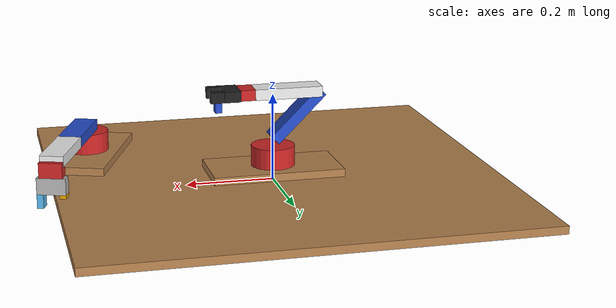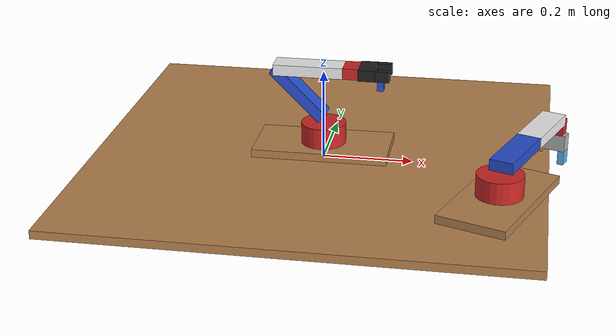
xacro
<?xml version="1.0"?>
<robot name="gaffa"
    xmlns:xi="http://www.w3.org/2001/XInclude"
    xmlns:gazebo="http://playerstage.sourceforge.net/gazebo/xmlschema/#gz"
    xmlns:model="http://playerstage.sourceforge.net/gazebo/xmlschema/#model"
    xmlns:sensor="http://playerstage.sourceforge.net/gazebo/xmlschema/#sensor"
    xmlns:body="http://playerstage.sourceforge.net/gazebo/xmlschema/#body"
    xmlns:geom="http://playerstage.sourceforge.net/gazebo/xmlschema/#geom"
    xmlns:joint="http://playerstage.sourceforge.net/gazebo/xmlschema/#joint"
    xmlns:interface="http://playerstage.sourceforge.net/gazebo/xmlschema/#interface"
    xmlns:rendering="http://playerstage.sourceforge.net/gazebo/xmlschema/#rendering"
    xmlns:renderable="http://playerstage.sourceforge.net/gazebo/xmlschema/#renderable"
    xmlns:controller="http://playerstage.sourceforge.net/gazebo/xmlschema/#controller"
    xmlns:physics="http://playerstage.sourceforge.net/gazebo/xmlschema/#physics"
    xmlns:xacro="http://www.ros.org/wiki/xacro">

    <include filename="$(find gaffa_description)/urdf/lynxmotion.urdf.xacro" />
    <include filename="$(find gaffa_description)/urdf/maplin.urdf.xacro" />

    <property name="GAFFA_BASE_MASS" value="100" />
    <property name="GAFFA_BASE_LENGTH" value="1" />
    <property name="GAFFA_BASE_WIDTH" value="1" />
    <property name="GAFFA_BASE_HEIGHT" value="0.018" />

    <!-- Base Block -->
    <link name="gaffa_base_block">
        <inertial>
        <mass value="${GAFFA_BASE_MASS}" />
        <origin xyz="0 0 0" rpy="0 0 0" />
        <inertia ixx="${GAFFA_BASE_MASS*(GAFFA_BASE_WIDTH*GAFFA_BASE_WIDTH + GAFFA_BASE_HEIGHT*GAFFA_BASE_HEIGHT)/12.0}"
                ixy="0" ixz="0"
                iyy="${GAFFA_BASE_MASS*(GAFFA_BASE_LENGTH*GAFFA_BASE_LENGTH + GAFFA_BASE_HEIGHT*GAFFA_BASE_HEIGHT)/12.0}"
                iyz="0"
                izz="${GAFFA_BASE_MASS*(GAFFA_BASE_LENGTH*GAFFA_BASE_LENGTH + GAFFA_BASE_WIDTH*GAFFA_BASE_WIDTH)/12.0}" />
        </inertial>
        <visual>
        <origin xyz="0 0 ${GAFFA_BASE_HEIGHT/2}" rpy="0 0 0" />
        <geometry name="base_block_visual_geom">
            <box size="${GAFFA_BASE_LENGTH} ${GAFFA_BASE_WIDTH} ${GAFFA_BASE_HEIGHT}" />
        </geometry>
        </visual>
        <collision>
        <origin xyz="0 0 ${GAFFA_BASE_HEIGHT/2}" rpy="0.0 0.0 0.0" />
        <geometry name="base_block_collision_geom">
            <box size="${GAFFA_BASE_LENGTH} ${GAFFA_BASE_WIDTH} ${GAFFA_BASE_HEIGHT}" />
        </geometry>
        </collision>
    </link>
    <gazebo reference="gaffa_base_block">
        <material>Gazebo/WoodFloor</material>
        <turnGravityOff>false</turnGravityOff>
        <selfCollide>true</selfCollide>
    </gazebo>

    <xacro:maplin_arm name="maplin" parent="gaffa_base_block">
        <origin xyz="0 0 ${GAFFA_BASE_HEIGHT}" rpy="0 0 0" />
    </xacro:maplin_arm>

    <xacro:lynxmotion_arm name="lynxmotion" parent="gaffa_base_block">
        <origin xyz="0.4 -0.22 ${GAFFA_BASE_HEIGHT}" rpy="0 0 ${70.0*M_PI/180.0}" />
    </xacro:lynxmotion_arm>

    <gazebo>

        <!-- PR2_ACTARRAY -->
        <controller:gazebo_ros_controller_manager name="gazebo_ros_controller_manager" plugin="libgazebo_ros_controller_manager.so">
            <alwaysOn>true</alwaysOn>
            <updateRate>1000.0</updateRate>
            <interface:audio name="gazebo_ros_controller_manager_dummy_iface" />
        </controller:gazebo_ros_controller_manager>

        <controller:gazebo_ros_time name="gazebo_ros_time" plugin="libgazebo_ros_time.so">
            <alwaysOn>true</alwaysOn>
            <updateRate>1000.0</updateRate>
            <interface:audio name="dummy_gazebo_ros_time_iface_should_not_be_here"/>
        </controller:gazebo_ros_time>
    </gazebo>

</robot>

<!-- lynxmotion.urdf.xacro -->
<robot
    xmlns:xi="http://www.w3.org/2001/XInclude"
    xmlns:gazebo="http://playerstage.sourceforge.net/gazebo/xmlschema/#gz"
    xmlns:model="http://playerstage.sourceforge.net/gazebo/xmlschema/#model"
    xmlns:sensor="http://playerstage.sourceforge.net/gazebo/xmlschema/#sensor"
    xmlns:body="http://playerstage.sourceforge.net/gazebo/xmlschema/#body"
    xmlns:geom="http://playerstage.sourceforge.net/gazebo/xmlschema/#geom"
    xmlns:joint="http://playerstage.sourceforge.net/gazebo/xmlschema/#joint"
    xmlns:interface="http://playerstage.sourceforge.net/gazebo/xmlschema/#interface"
    xmlns:rendering="http://playerstage.sourceforge.net/gazebo/xmlschema/#rendering"
    xmlns:renderable="http://playerstage.sourceforge.net/gazebo/xmlschema/#renderable"
    xmlns:controller="http://playerstage.sourceforge.net/gazebo/xmlschema/#controller"
    xmlns:physics="http://playerstage.sourceforge.net/gazebo/xmlschema/#physics"
    xmlns:xacro="http://www.ros.org/wiki/xacro">

<property name="M_PI" value="3.1415926535897931" />
<property name="BASE_MASS" value="100" />
<property name="BASE_LENGTH" value="0.3" />
<property name="BASE_WIDTH" value="0.15" />
<property name="BASE_HEIGHT" value="0.018" />

<property name="BASE_ROTATE_MASS" value="0.25" />
<property name="BASE_ROTATE_RADIUS" value="0.05" />
<property name="BASE_ROTATE_HEIGHT" value="0.0466" />

<property name="SHOULDER_HEIGHT" value="0.06193" />

<property name="UPPER_ARM_MASS" value="0.1" />
<property name="UPPER_ARM_LENGTH" value="0.154" />
<property name="UPPER_ARM_WIDTH" value="0.052" />
<property name="UPPER_ARM_HEIGHT" value="0.0244" />

<!-- Mass includes both elbow and wrist servos -->
<property name="FORE_ARM_MASS" value="0.21" />
<property name="FORE_ARM_LENGTH" value="0.154" />
<property name="FORE_ARM_WIDTH" value="0.053" />
<property name="FORE_ARM_HEIGHT" value="0.0244" />

<!-- Mass includes gripper rotate servo -->
<property name="WRIST_MASS" value="0.065" />
<property name="WRIST_LENGTH" value="0.0346" />
<property name="WRIST_WIDTH" value="0.052" />
<property name="WRIST_HEIGHT" value="0.0244" />

<!-- Mass includes gripper 'grip' servo -->
<property name="GRIPPER_BASE_MASS" value="0.065" />
<property name="GRIPPER_BASE_LENGTH" value="0.037" />
<property name="GRIPPER_BASE_WIDTH" value="0.0648" />
<property name="GRIPPER_BASE_HEIGHT" value="0.0244" />

<property name="GRIPPER_FINGER_MASS" value="0.01" />
<property name="GRIPPER_FINGER_LENGTH" value="0.0315" />
<property name="GRIPPER_FINGER_WIDTH" value="0.0144" />
<property name="GRIPPER_FINGER_HEIGHT" value="0.0244" />

<xacro:macro name="lynxmotion_arm" params="parent name *origin">

<!-- Base Block -->
<joint name="${name}_base_block_joint" type="fixed" >
    <axis xyz="1 0 0" />
    <limit upper="0" lower="0" effort="100" velocity="5" />
    <parent link="${parent}" />
    <xacro:insert_block name="origin" />
    <child link="${name}_base_block" />
</joint>
<link name="${name}_base_block">
    <inertial>
    <mass value="${BASE_MASS}" />
    <origin xyz="0 0 0" rpy="0 0 0" />
    <inertia ixx="${BASE_MASS*(BASE_WIDTH*BASE_WIDTH + BASE_HEIGHT*BASE_HEIGHT)/12.0}"
            ixy="0" ixz="0"
            iyy="${BASE_MASS*(BASE_LENGTH*BASE_LENGTH + BASE_HEIGHT*BASE_HEIGHT)/12.0}"
            iyz="0"
            izz="${BASE_MASS*(BASE_LENGTH*BASE_LENGTH + BASE_WIDTH*BASE_WIDTH)/12.0}" />
    </inertial>
    <visual>
    <origin xyz="0 0 ${BASE_HEIGHT/2}" rpy="0 0 0" />
    <geometry name="base_block_visual_geom">
        <box size="${BASE_LENGTH} ${BASE_WIDTH} ${BASE_HEIGHT}" />
    </geometry>
    </visual>
    <collision>
    <origin xyz="0 0 ${BASE_HEIGHT/2}" rpy="0.0 0.0 0.0" />
    <geometry name="base_block_collision_geom">
        <box size="${BASE_LENGTH} ${BASE_WIDTH} ${BASE_HEIGHT}" />
    </geometry>
    </collision>
</link>
<gazebo reference="${name}_base_block">
    <material>Gazebo/LightWood</material>
    <turnGravityOff>false</turnGravityOff>
    <selfCollide>true</selfCollide>
</gazebo>

<!-- Base Rotate -->
<joint name="${name}_base_rotate_joint" type="revolute" >
    <axis xyz="0 0 1" />
    <limit upper="${M_PI/2}" lower="${-M_PI/2}" effort="100" velocity="5" />
    <safety_controller k_position="20" k_velocity="4"
        soft_upper_limit="${M_PI/2 - 0.10}"
        soft_lower_limit="${-M_PI/2 + 0.10}" />
    <parent link="${name}_base_block" />
    <origin xyz="0 0 ${BASE_ROTATE_HEIGHT/2 + BASE_HEIGHT}" rpy="0 0 0" />
    <child link="${name}_base_rotate_link" />
</joint>
<link name="${name}_base_rotate_link">
    <inertial >
    <mass value="${BASE_ROTATE_MASS}" />
    <origin xyz="0 0 0" />
    <inertia ixx="${BASE_ROTATE_MASS*(3*BASE_ROTATE_RADIUS*BASE_ROTATE_RADIUS + BASE_ROTATE_HEIGHT*BASE_ROTATE_HEIGHT)/12.0}"
            ixy="0.0"  ixz="0.0"
            iyy="${BASE_ROTATE_MASS*(3*BASE_ROTATE_RADIUS*BASE_ROTATE_RADIUS + BASE_ROTATE_HEIGHT*BASE_ROTATE_HEIGHT)/12.0}"
            iyz="0.0"
            izz="${(BASE_ROTATE_MASS*BASE_ROTATE_RADIUS*BASE_ROTATE_RADIUS)/2.0}" />
    </inertial>
    <visual >
    <origin xyz="0.0 0 0" rpy="0 0 0" />
    <geometry name="base_rotate_visual_geom">
        <cylinder radius="${BASE_ROTATE_RADIUS}" length="${BASE_ROTATE_HEIGHT}" />
    </geometry>
    </visual>
    <collision >
    <origin xyz="0.0 0 0" rpy="0 0 0" />
    <geometry name="base_rotate_collision_geom">
        <cylinder radius="${BASE_ROTATE_RADIUS}" length="${BASE_ROTATE_HEIGHT}" />
    </geometry>
    </collision>
</link>
<gazebo reference="${name}_base_rotate_link">
    <material>Gazebo/Red</material>
    <turnGravityOff>false</turnGravityOff>
    <selfCollide>true</selfCollide>
</gazebo>

<!-- Shoulder and Upper arm -->
<joint name="${name}_shoulder_rotate_joint" type="revolute" >
    <axis xyz="0 0 1" />
    <limit upper="${3*M_PI/4}" lower="0" effort="100" velocity="5" />
    <safety_controller k_position="20" k_velocity="4"
        soft_upper_limit="${3*M_PI/4 - 0.10}"
        soft_lower_limit="${0.0 + 0.10}" />
    <parent link="${name}_base_rotate_link" />
    <origin xyz="0 0 ${SHOULDER_HEIGHT - BASE_ROTATE_HEIGHT/2}" rpy="${M_PI/2} 0 0" />
    <child link="${name}_upper_arm_link" />
</joint>
<link name="${name}_upper_arm_link">
    <inertial >
    <mass value="${UPPER_ARM_MASS}" />
    <origin xyz="${UPPER_ARM_LENGTH/2} 0 0" />
    <inertia ixx="${UPPER_ARM_MASS*(UPPER_ARM_WIDTH*UPPER_ARM_WIDTH + UPPER_ARM_HEIGHT*UPPER_ARM_HEIGHT)/12.0}"
            ixy="0" ixz="0"
            iyy="${UPPER_ARM_MASS*(UPPER_ARM_LENGTH*UPPER_ARM_LENGTH + UPPER_ARM_WIDTH*UPPER_ARM_WIDTH)/12.0}"
            iyz="0"
            izz="${UPPER_ARM_MASS*(UPPER_ARM_LENGTH*UPPER_ARM_LENGTH + UPPER_ARM_HEIGHT*UPPER_ARM_HEIGHT)/12.0}" />
    </inertial>
    <visual >
    <origin xyz="${UPPER_ARM_LENGTH/2} 0 0.0" rpy="0 0 0" />
    <geometry name="upper_arm_visual_geom">
        <box size="${UPPER_ARM_LENGTH} ${UPPER_ARM_HEIGHT} ${UPPER_ARM_WIDTH}" />
    </geometry>
    </visual>
    <collision >
    <origin xyz="${UPPER_ARM_LENGTH/2} 0 0.0" rpy="0 0 0" />
    <geometry name="upper_arm_collision_geom">
        <box size="${UPPER_ARM_LENGTH} ${UPPER_ARM_HEIGHT} ${UPPER_ARM_WIDTH}" />
    </geometry>
    </collision>
</link>
<gazebo reference="${name}_upper_arm_link">
    <material>Gazebo/Blue</material>
    <turnGravityOff>false</turnGravityOff>
    <selfCollide>true</selfCollide>
</gazebo>

<!-- Elbow and Forearm -->
<joint name="${name}_elbow_rotate_joint" type="revolute" >
    <axis xyz="0 0 1" />
    <limit upper="0" lower="${-7*M_PI/8}" effort="100" velocity="5" />
    <safety_controller k_position="20" k_velocity="4"
        soft_upper_limit="${0.0 - 0.10}"
        soft_lower_limit="${-7*M_PI/8 + 0.10}" />
    <parent link="${name}_upper_arm_link" />
    <origin xyz="${UPPER_ARM_LENGTH} 0 0.0" rpy="0 0 0" />
    <child link="${name}_fore_arm_link" />
</joint>
<link name="${name}_fore_arm_link">
    <inertial >
    <mass value="${FORE_ARM_MASS}" />
    <origin xyz="${FORE_ARM_LENGTH/2} 0 0" />
    <inertia ixx="${FORE_ARM_MASS*(FORE_ARM_WIDTH*FORE_ARM_WIDTH + FORE_ARM_HEIGHT*FORE_ARM_HEIGHT)/12.0}"
            ixy="0" ixz="0"
            iyy="${FORE_ARM_MASS*(FORE_ARM_LENGTH*FORE_ARM_LENGTH + FORE_ARM_WIDTH*FORE_ARM_WIDTH)/12.0}"
            iyz="0"
            izz="${FORE_ARM_MASS*(FORE_ARM_LENGTH*FORE_ARM_LENGTH + FORE_ARM_HEIGHT*FORE_ARM_HEIGHT)/12.0}" />
    </inertial>
    <visual >
    <origin xyz="${FORE_ARM_LENGTH/2} 0 0.0" rpy="0 0 0" />
    <geometry name="fore_arm_visual_geom">
        <box size="${FORE_ARM_LENGTH} ${FORE_ARM_HEIGHT} ${FORE_ARM_WIDTH}" />
    </geometry>
    </visual>
    <collision >
    <origin xyz="${FORE_ARM_LENGTH/2} 0 0.0" rpy="0 0 0" />
    <geometry name="fore_arm_collision_geom">
        <box size="${FORE_ARM_LENGTH} ${FORE_ARM_HEIGHT} ${FORE_ARM_WIDTH}" />
    </geometry>
    </collision>
</link>
<gazebo reference="${name}_fore_arm_link">
    <material>Gazebo/White</material>
    <turnGravityOff>false</turnGravityOff>
    <selfCollide>true</selfCollide>
</gazebo>

<!-- Wrist -->
<joint name="${name}_wrist_rotate_joint" type="revolute" >
    <axis xyz="0 0 1" />
    <limit upper="${M_PI}" lower="${0.0}" effort="100" velocity="5" />
    <parent link="${name}_fore_arm_link" />
    <origin xyz="${FORE_ARM_LENGTH} 0 0.0" rpy="0 0 ${-M_PI/2}" />
    <child link="${name}_wrist_link" />
</joint>
<link name="${name}_wrist_link">
    <inertial >
    <mass value="${WRIST_MASS}" />
    <origin xyz="${WRIST_LENGTH/2} 0 0" />
    <inertia ixx="${WRIST_MASS*(WRIST_WIDTH*WRIST_WIDTH + WRIST_HEIGHT*WRIST_HEIGHT)/12.0}"
            ixy="0" ixz="0"
            iyy="${WRIST_MASS*(WRIST_LENGTH*WRIST_LENGTH + WRIST_WIDTH*WRIST_WIDTH)/12.0}"
            iyz="0"
            izz="${WRIST_MASS*(WRIST_LENGTH*WRIST_LENGTH + WRIST_HEIGHT*WRIST_HEIGHT)/12.0}" />
    </inertial>
    <visual >
    <origin xyz="${WRIST_LENGTH/2} 0 0.0" rpy="0 0 0" />
    <geometry name="wrist_visual_geom">
        <box size="${WRIST_LENGTH} ${WRIST_HEIGHT} ${WRIST_WIDTH}" />
    </geometry>
    </visual>
    <collision >
    <origin xyz="${WRIST_LENGTH/2} 0 0.0" rpy="0 0 0" />
    <geometry name="wrist_collision_geom">
        <box size="${WRIST_LENGTH} ${WRIST_HEIGHT} ${WRIST_WIDTH}" />
    </geometry>
    </collision>
</link>
<gazebo reference="${name}_wrist_link">
    <material>Gazebo/Red</material>
    <turnGravityOff>false</turnGravityOff>
    <selfCollide>true</selfCollide>
</gazebo>

<!-- Gripper base -->
<joint name="${name}_gripper_rotate_joint" type="revolute" >
    <axis xyz="0 0 1" />
    <limit upper="${M_PI/2}" lower="${-M_PI/2}" effort="100" velocity="5" />
    <parent link="${name}_wrist_link" />
    <origin xyz="${WRIST_LENGTH} 0 0.0" rpy="0 ${M_PI/2} 0" />
    <child link="${name}_gripper_base_link" />
</joint>
<link name="${name}_gripper_base_link">
    <inertial >
    <mass value="${GRIPPER_BASE_MASS}" />
    <origin xyz="${GRIPPER_BASE_LENGTH/2} 0 0" />
    <inertia ixx="${GRIPPER_BASE_MASS*(GRIPPER_BASE_LENGTH*GRIPPER_BASE_LENGTH + GRIPPER_BASE_HEIGHT*GRIPPER_BASE_HEIGHT)/12.0}"
            ixy="0" ixz="0"
            iyy="${GRIPPER_BASE_MASS*(GRIPPER_BASE_LENGTH*GRIPPER_BASE_LENGTH + GRIPPER_BASE_WIDTH*GRIPPER_BASE_WIDTH)/12.0}"
            iyz="0"
            izz="${GRIPPER_BASE_MASS*(GRIPPER_BASE_WIDTH*GRIPPER_BASE_WIDTH + GRIPPER_BASE_HEIGHT*GRIPPER_BASE_HEIGHT)/12.0}" />
    </inertial>
    <visual >
    <origin xyz="0 0 ${GRIPPER_BASE_LENGTH/2}" rpy="0 0 0" />
    <geometry name="gripper_base_visual_geom">
        <box size="${GRIPPER_BASE_WIDTH} ${GRIPPER_BASE_HEIGHT} ${GRIPPER_BASE_LENGTH}" />
    </geometry>
    </visual>
    <collision >
    <origin xyz="0 0 ${GRIPPER_BASE_LENGTH/2}" rpy="0 0 0" />
    <geometry name="gripper_base_collision_geom">
        <box size="${GRIPPER_BASE_WIDTH} ${GRIPPER_BASE_HEIGHT} ${GRIPPER_BASE_LENGTH}" />
    </geometry>
    </collision>
</link>
<gazebo reference="${name}_gripper_base_link">
    <material>Gazebo/RustySteel</material>
    <turnGravityOff>false</turnGravityOff>
    <selfCollide>true</selfCollide>
</gazebo>

<!-- Gripper left finger -->
<joint name="${name}_gripper_left_prismatic_joint" type="prismatic" >
    <axis xyz="1 0 0" />
    <limit upper="${GRIPPER_BASE_WIDTH/2 - GRIPPER_FINGER_WIDTH/2}" lower="${GRIPPER_BASE_WIDTH/2 - GRIPPER_FINGER_WIDTH/2}" effort="100" velocity="5" />
    <parent link="${name}_gripper_base_link" />
    <origin xyz="0 0 ${GRIPPER_BASE_LENGTH}" rpy="0 0 0" />
    <child link="${name}_gripper_left_finger_link" />
</joint>
<link name="${name}_gripper_left_finger_link">
    <inertial >
    <mass value="${GRIPPER_FINGER_MASS}" />
    <origin xyz="${GRIPPER_FINGER_LENGTH/2} 0 0" />
    <inertia ixx="${GRIPPER_FINGER_MASS*(GRIPPER_FINGER_LENGTH*GRIPPER_FINGER_LENGTH + GRIPPER_FINGER_HEIGHT*GRIPPER_FINGER_HEIGHT)/12.0}"
            ixy="0" ixz="0"
            iyy="${GRIPPER_FINGER_MASS*(GRIPPER_FINGER_LENGTH*GRIPPER_FINGER_LENGTH + GRIPPER_FINGER_WIDTH*GRIPPER_FINGER_WIDTH)/12.0}"
            iyz="0"
            izz="${GRIPPER_FINGER_MASS*(GRIPPER_FINGER_WIDTH*GRIPPER_FINGER_WIDTH + GRIPPER_FINGER_HEIGHT*GRIPPER_FINGER_HEIGHT)/12.0}" />
    </inertial>
    <visual >
    <origin xyz="0 0 ${GRIPPER_FINGER_LENGTH/2}" rpy="0 0 0" />
    <geometry name="gripper_finger_visual_geom">
        <box size="${GRIPPER_FINGER_WIDTH} ${GRIPPER_FINGER_HEIGHT} ${GRIPPER_FINGER_LENGTH}" />
    </geometry>
    </visual>
    <collision >
    <origin xyz="0 0 ${GRIPPER_FINGER_LENGTH/2}" rpy="0 0 0" />
    <geometry name="gripper_finger_collision_geom">
        <box size="${GRIPPER_FINGER_WIDTH} ${GRIPPER_FINGER_HEIGHT} ${GRIPPER_FINGER_LENGTH}" />
    </geometry>
    </collision>
</link>
<gazebo reference="${name}_gripper_left_finger_link">
    <material>Gazebo/RustySteel</material>
    <turnGravityOff>false</turnGravityOff>
    <selfCollide>true</selfCollide>
</gazebo>

<!-- Gripper right finger -->
<joint name="${name}_gripper_right_prismatic_joint" type="prismatic" >
    <axis xyz="1 0 0" />
    <limit upper="${GRIPPER_BASE_WIDTH/2 - GRIPPER_FINGER_WIDTH/2}" lower="${GRIPPER_BASE_WIDTH/2 - GRIPPER_FINGER_WIDTH/2}" effort="100" velocity="5" />
    <parent link="${name}_gripper_base_link" />
    <origin xyz="0 0 ${GRIPPER_BASE_LENGTH}" rpy="0 0 ${M_PI}" />
    <child link="${name}_gripper_right_finger_link" />
</joint>
<link name="${name}_gripper_right_finger_link">
    <inertial >
    <mass value="${GRIPPER_FINGER_MASS}" />
    <origin xyz="${GRIPPER_FINGER_LENGTH/2} 0 0" />
    <inertia ixx="${GRIPPER_FINGER_MASS*(GRIPPER_FINGER_LENGTH*GRIPPER_FINGER_LENGTH + GRIPPER_FINGER_HEIGHT*GRIPPER_FINGER_HEIGHT)/12.0}"
            ixy="0" ixz="0"
            iyy="${GRIPPER_FINGER_MASS*(GRIPPER_FINGER_LENGTH*GRIPPER_FINGER_LENGTH + GRIPPER_FINGER_WIDTH*GRIPPER_FINGER_WIDTH)/12.0}"
            iyz="0"
            izz="${GRIPPER_FINGER_MASS*(GRIPPER_FINGER_WIDTH*GRIPPER_FINGER_WIDTH + GRIPPER_FINGER_HEIGHT*GRIPPER_FINGER_HEIGHT)/12.0}" />
    </inertial>
    <visual >
    <origin xyz="0 0 ${GRIPPER_FINGER_LENGTH/2}" rpy="0 0 0" />
    <geometry name="gripper_finger_visual_geom">
        <box size="${GRIPPER_FINGER_WIDTH} ${GRIPPER_FINGER_HEIGHT} ${GRIPPER_FINGER_LENGTH}" />
    </geometry>
    </visual>
    <collision >
    <origin xyz="0 0 ${GRIPPER_FINGER_LENGTH/2}" rpy="0 0 0" />
    <geometry name="gripper_finger_collision_geom">
        <box size="${GRIPPER_FINGER_WIDTH} ${GRIPPER_FINGER_HEIGHT} ${GRIPPER_FINGER_LENGTH}" />
    </geometry>
    </collision>
</link>
<gazebo reference="${name}_gripper_right_finger_link">
    <material>Gazebo/RustySteel</material>
    <turnGravityOff>false</turnGravityOff>
    <selfCollide>true</selfCollide>
</gazebo>

<!-- mechanism controls -->
<transmission type="pr2_mechanism_model/SimpleTransmission" name="base_rotate_trans">
    <actuator name="base_rotate_motor" />
    <joint name="${name}_base_rotate_joint" />
    <mechanicalReduction>1</mechanicalReduction>
    <motorTorqueConstant>1</motorTorqueConstant>
</transmission>
<transmission type="pr2_mechanism_model/SimpleTransmission" name="shoulder_rotate_trans">
    <actuator name="shoulder_rotate_motor" />
    <joint name="${name}_shoulder_rotate_joint" />
    <mechanicalReduction>1</mechanicalReduction>
    <motorTorqueConstant>1</motorTorqueConstant>
</transmission>
<transmission type="pr2_mechanism_model/SimpleTransmission" name="elbow_rotate_trans">
    <actuator name="elbow_rotate_motor" />
    <joint name="${name}_elbow_rotate_joint" />
    <mechanicalReduction>1</mechanicalReduction>
    <motorTorqueConstant>1</motorTorqueConstant>
</transmission>
<transmission type="pr2_mechanism_model/SimpleTransmission" name="wrist_rotate_trans">
    <actuator name="wrist_rotate_motor" />
    <joint name="${name}_wrist_rotate_joint" />
    <mechanicalReduction>1</mechanicalReduction>
    <motorTorqueConstant>1</motorTorqueConstant>
</transmission>
<transmission type="pr2_mechanism_model/SimpleTransmission" name="gripper_rotate_trans">
    <actuator name="gripper_rotate_motor" />
    <joint name="${name}_gripper_rotate_joint" />
    <mechanicalReduction>1</mechanicalReduction>
    <motorTorqueConstant>1</motorTorqueConstant>
</transmission>
</xacro:macro>

</robot>

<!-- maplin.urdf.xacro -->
<robot
    xmlns:xi="http://www.w3.org/2001/XInclude"
    xmlns:gazebo="http://playerstage.sourceforge.net/gazebo/xmlschema/#gz"
    xmlns:model="http://playerstage.sourceforge.net/gazebo/xmlschema/#model"
    xmlns:sensor="http://playerstage.sourceforge.net/gazebo/xmlschema/#sensor"
    xmlns:body="http://playerstage.sourceforge.net/gazebo/xmlschema/#body"
    xmlns:geom="http://playerstage.sourceforge.net/gazebo/xmlschema/#geom"
    xmlns:joint="http://playerstage.sourceforge.net/gazebo/xmlschema/#joint"
    xmlns:interface="http://playerstage.sourceforge.net/gazebo/xmlschema/#interface"
    xmlns:rendering="http://playerstage.sourceforge.net/gazebo/xmlschema/#rendering"
    xmlns:renderable="http://playerstage.sourceforge.net/gazebo/xmlschema/#renderable"
    xmlns:controller="http://playerstage.sourceforge.net/gazebo/xmlschema/#controller"
    xmlns:physics="http://playerstage.sourceforge.net/gazebo/xmlschema/#physics"
    xmlns:xacro="http://www.ros.org/wiki/xacro">

<property name="M_PI" value="3.1415926535897931" />
<property name="BASE_MASS" value="100" />
<property name="BASE_LENGTH" value="0.3" />
<property name="BASE_WIDTH" value="0.15" />
<property name="BASE_HEIGHT" value="0.018" />

<property name="BASE_ROTATE_MASS" value="0.25" />
<property name="BASE_ROTATE_RADIUS" value="0.05" />
<property name="BASE_ROTATE_HEIGHT" value="0.0466" />

<property name="SHOULDER_HEIGHT" value="0.06193" />

<property name="UPPER_ARM_MASS" value="0.1" />
<property name="UPPER_ARM_LENGTH" value="0.154" />
<property name="UPPER_ARM_WIDTH" value="0.052" />
<property name="UPPER_ARM_HEIGHT" value="0.0244" />

<!-- Mass includes both elbow and wrist servos -->
<property name="FORE_ARM_MASS" value="0.21" />
<property name="FORE_ARM_LENGTH" value="0.154" />
<property name="FORE_ARM_WIDTH" value="0.053" />
<property name="FORE_ARM_HEIGHT" value="0.0244" />

<!-- Mass includes gripper rotate servo -->
<property name="WRIST_MASS" value="0.065" />
<property name="WRIST_LENGTH" value="0.0346" />
<property name="WRIST_WIDTH" value="0.052" />
<property name="WRIST_HEIGHT" value="0.0244" />

<!-- Mass includes gripper 'grip' servo -->
<property name="GRIPPER_BASE_MASS" value="0.065" />
<property name="GRIPPER_BASE_LENGTH" value="0.037" />
<property name="GRIPPER_BASE_WIDTH" value="0.0648" />
<property name="GRIPPER_BASE_HEIGHT" value="0.0244" />

<property name="GRIPPER_FINGER_MASS" value="0.01" />
<property name="GRIPPER_FINGER_LENGTH" value="0.0315" />
<property name="GRIPPER_FINGER_WIDTH" value="0.0144" />
<property name="GRIPPER_FINGER_HEIGHT" value="0.0244" />

<xacro:macro name="maplin_arm" params="name parent *origin">

<!-- Base Block -->
<joint name="${name}_base_block_joint" type="fixed" >
    <axis xyz="1 0 0" />
    <limit upper="0" lower="0" effort="100" velocity="5" />
    <parent link="${parent}" />
    <xacro:insert_block name="origin" />
    <child link="${name}_base_block" />
</joint>
<link name="${name}_base_block">
    <inertial>
    <mass value="${BASE_MASS}" />
    <origin xyz="0 0 0" rpy="0 0 0" />
    <inertia ixx="${BASE_MASS*(BASE_WIDTH*BASE_WIDTH + BASE_HEIGHT*BASE_HEIGHT)/12.0}"
            ixy="0" ixz="0"
            iyy="${BASE_MASS*(BASE_LENGTH*BASE_LENGTH + BASE_HEIGHT*BASE_HEIGHT)/12.0}"
            iyz="0"
            izz="${BASE_MASS*(BASE_LENGTH*BASE_LENGTH + BASE_WIDTH*BASE_WIDTH)/12.0}" />
    </inertial>
    <visual>
    <origin xyz="0 0 ${BASE_HEIGHT/2}" rpy="0 0 0" />
    <geometry name="base_block_visual_geom">
        <box size="${BASE_LENGTH} ${BASE_WIDTH} ${BASE_HEIGHT}" />
    </geometry>
    </visual>
    <collision>
    <origin xyz="0 0 ${BASE_HEIGHT/2}" rpy="0.0 0.0 0.0" />
    <geometry name="base_block_collision_geom">
        <box size="${BASE_LENGTH} ${BASE_WIDTH} ${BASE_HEIGHT}" />
    </geometry>
    </collision>
</link>
<gazebo reference="${name}_base_block">
    <material>Gazebo/LightWood</material>
    <turnGravityOff>false</turnGravityOff>
    <selfCollide>true</selfCollide>
</gazebo>

<!-- Base Rotate -->
<joint name="${name}_base_rotate_joint" type="revolute" >
    <axis xyz="0 0 1" />
    <limit upper="0" lower="0" effort="100" velocity="5" />
    <parent link="${name}_base_block" />
    <origin xyz="0 0 ${BASE_ROTATE_HEIGHT/2 + BASE_HEIGHT}" rpy="0 0 0" />
    <child link="${name}_base_rotate_link" />
</joint>
<link name="${name}_base_rotate_link">
    <inertial >
    <mass value="${BASE_ROTATE_MASS}" />
    <origin xyz="0 0 0" />
    <inertia ixx="${BASE_ROTATE_MASS*(3*BASE_ROTATE_RADIUS*BASE_ROTATE_RADIUS + BASE_ROTATE_HEIGHT*BASE_ROTATE_HEIGHT)/12.0}"
            ixy="0.0"  ixz="0.0"
            iyy="${BASE_ROTATE_MASS*(3*BASE_ROTATE_RADIUS*BASE_ROTATE_RADIUS + BASE_ROTATE_HEIGHT*BASE_ROTATE_HEIGHT)/12.0}"
            iyz="0.0"
            izz="${(BASE_ROTATE_MASS*BASE_ROTATE_RADIUS*BASE_ROTATE_RADIUS)/2.0}" />
    </inertial>
    <visual >
    <origin xyz="0.0 0 0" rpy="0 0 0" />
    <geometry name="base_rotate_visual_geom">
        <cylinder radius="${BASE_ROTATE_RADIUS}" length="${BASE_ROTATE_HEIGHT}" />
    </geometry>
    </visual>
    <collision >
    <origin xyz="0.0 0 0" rpy="0 0 0" />
    <geometry name="base_rotate_collision_geom">
        <cylinder radius="${BASE_ROTATE_RADIUS}" length="${BASE_ROTATE_HEIGHT}" />
    </geometry>
    </collision>
</link>
<gazebo reference="${name}_base_rotate_link">
    <material>Gazebo/Red</material>
    <turnGravityOff>false</turnGravityOff>
    <selfCollide>true</selfCollide>
</gazebo>

<!-- Shoulder and Upper arm -->
<joint name="${name}_shoulder_rotate_joint" type="revolute" >
    <axis xyz="0 0 1" />
    <limit upper="${3*M_PI/4}" lower="${3*M_PI/4}" effort="100" velocity="5" />
    <parent link="${name}_base_rotate_link" />
    <origin xyz="0 0 ${SHOULDER_HEIGHT - BASE_ROTATE_HEIGHT/2}" rpy="${M_PI/2} 0 0" />
    <child link="${name}_upper_arm_link" />
</joint>
<link name="${name}_upper_arm_link">
    <inertial >
    <mass value="${UPPER_ARM_MASS}" />
    <origin xyz="${UPPER_ARM_LENGTH/2} 0 0" />
    <inertia ixx="${UPPER_ARM_MASS*(UPPER_ARM_WIDTH*UPPER_ARM_WIDTH + UPPER_ARM_HEIGHT*UPPER_ARM_HEIGHT)/12.0}"
            ixy="0" ixz="0"
            iyy="${UPPER_ARM_MASS*(UPPER_ARM_LENGTH*UPPER_ARM_LENGTH + UPPER_ARM_WIDTH*UPPER_ARM_WIDTH)/12.0}"
            iyz="0"
            izz="${UPPER_ARM_MASS*(UPPER_ARM_LENGTH*UPPER_ARM_LENGTH + UPPER_ARM_HEIGHT*UPPER_ARM_HEIGHT)/12.0}" />
    </inertial>
    <visual >
    <origin xyz="${UPPER_ARM_LENGTH/2} 0 0.0" rpy="0 0 0" />
    <geometry name="upper_arm_visual_geom">
        <box size="${UPPER_ARM_LENGTH} ${UPPER_ARM_HEIGHT} ${UPPER_ARM_WIDTH}" />
    </geometry>
    </visual>
    <collision >
    <origin xyz="${UPPER_ARM_LENGTH/2} 0 0.0" rpy="0 0 0" />
    <geometry name="upper_arm_collision_geom">
        <box size="${UPPER_ARM_LENGTH} ${UPPER_ARM_HEIGHT} ${UPPER_ARM_WIDTH}" />
    </geometry>
    </collision>
</link>
<gazebo reference="${name}_upper_arm_link">
    <material>Gazebo/Blue</material>
    <turnGravityOff>false</turnGravityOff>
    <selfCollide>true</selfCollide>
</gazebo>

<!-- Elbow and Forearm -->
<joint name="${name}_elbow_rotate_joint" type="revolute" >
    <axis xyz="0 0 1" />
    <limit upper="${-3*M_PI/4}" lower="${-3*M_PI/4}" effort="100" velocity="5" />
    <parent link="${name}_upper_arm_link" />
    <origin xyz="${UPPER_ARM_LENGTH} 0 0.0" rpy="0 0 0" />
    <child link="${name}_fore_arm_link" />
</joint>
<link name="${name}_fore_arm_link">
    <inertial >
    <mass value="${FORE_ARM_MASS}" />
    <origin xyz="${FORE_ARM_LENGTH/2} 0 0" />
    <inertia ixx="${FORE_ARM_MASS*(FORE_ARM_WIDTH*FORE_ARM_WIDTH + FORE_ARM_HEIGHT*FORE_ARM_HEIGHT)/12.0}"
            ixy="0" ixz="0"
            iyy="${FORE_ARM_MASS*(FORE_ARM_LENGTH*FORE_ARM_LENGTH + FORE_ARM_WIDTH*FORE_ARM_WIDTH)/12.0}"
            iyz="0"
            izz="${FORE_ARM_MASS*(FORE_ARM_LENGTH*FORE_ARM_LENGTH + FORE_ARM_HEIGHT*FORE_ARM_HEIGHT)/12.0}" />
    </inertial>
    <visual >
    <origin xyz="${FORE_ARM_LENGTH/2} 0 0.0" rpy="0 0 0" />
    <geometry name="fore_arm_visual_geom">
        <box size="${FORE_ARM_LENGTH} ${FORE_ARM_HEIGHT} ${FORE_ARM_WIDTH}" />
    </geometry>
    </visual>
    <collision >
    <origin xyz="${FORE_ARM_LENGTH/2} 0 0.0" rpy="0 0 0" />
    <geometry name="fore_arm_collision_geom">
        <box size="${FORE_ARM_LENGTH} ${FORE_ARM_HEIGHT} ${FORE_ARM_WIDTH}" />
    </geometry>
    </collision>
</link>
<gazebo reference="${name}_fore_arm_link">
    <material>Gazebo/White</material>
    <turnGravityOff>false</turnGravityOff>
    <selfCollide>true</selfCollide>
</gazebo>

<!-- Wrist -->
<joint name="${name}_wrist_rotate_joint" type="revolute" >
    <axis xyz="0 0 1" />
    <limit upper="${M_PI/2}" lower="${M_PI/2}" effort="100" velocity="5" />
    <parent link="${name}_fore_arm_link" />
    <origin xyz="${FORE_ARM_LENGTH} 0 0.0" rpy="0 0 ${-M_PI/2}" />
    <child link="${name}_wrist_link" />
</joint>
<link name="${name}_wrist_link">
    <inertial >
    <mass value="${WRIST_MASS}" />
    <origin xyz="${WRIST_LENGTH/2} 0 0" />
    <inertia ixx="${WRIST_MASS*(WRIST_WIDTH*WRIST_WIDTH + WRIST_HEIGHT*WRIST_HEIGHT)/12.0}"
            ixy="0" ixz="0"
            iyy="${WRIST_MASS*(WRIST_LENGTH*WRIST_LENGTH + WRIST_WIDTH*WRIST_WIDTH)/12.0}"
            iyz="0"
            izz="${WRIST_MASS*(WRIST_LENGTH*WRIST_LENGTH + WRIST_HEIGHT*WRIST_HEIGHT)/12.0}" />
    </inertial>
    <visual >
    <origin xyz="${WRIST_LENGTH/2} 0 0.0" rpy="0 0 0" />
    <geometry name="wrist_visual_geom">
        <box size="${WRIST_LENGTH} ${WRIST_HEIGHT} ${WRIST_WIDTH}" />
    </geometry>
    </visual>
    <collision >
    <origin xyz="${WRIST_LENGTH/2} 0 0.0" rpy="0 0 0" />
    <geometry name="wrist_collision_geom">
        <box size="${WRIST_LENGTH} ${WRIST_HEIGHT} ${WRIST_WIDTH}" />
    </geometry>
    </collision>
</link>
<gazebo reference="${name}_wrist_link">
    <material>Gazebo/Red</material>
    <turnGravityOff>false</turnGravityOff>
    <selfCollide>true</selfCollide>
</gazebo>

<!-- Gripper base -->
<joint name="${name}_gripper_rotate_joint" type="revolute" >
    <axis xyz="0 0 1" />
    <limit upper="0" lower="0" effort="100" velocity="5" />
    <parent link="${name}_wrist_link" />
    <origin xyz="${WRIST_LENGTH} 0 0.0" rpy="0 ${M_PI/2} 0" />
    <child link="${name}_gripper_base_link" />
</joint>
<link name="${name}_gripper_base_link">
    <inertial >
    <mass value="${GRIPPER_BASE_MASS}" />
    <origin xyz="${GRIPPER_BASE_LENGTH/2} 0 0" />
    <inertia ixx="${GRIPPER_BASE_MASS*(GRIPPER_BASE_LENGTH*GRIPPER_BASE_LENGTH + GRIPPER_BASE_HEIGHT*GRIPPER_BASE_HEIGHT)/12.0}"
            ixy="0" ixz="0"
            iyy="${GRIPPER_BASE_MASS*(GRIPPER_BASE_LENGTH*GRIPPER_BASE_LENGTH + GRIPPER_BASE_WIDTH*GRIPPER_BASE_WIDTH)/12.0}"
            iyz="0"
            izz="${GRIPPER_BASE_MASS*(GRIPPER_BASE_WIDTH*GRIPPER_BASE_WIDTH + GRIPPER_BASE_HEIGHT*GRIPPER_BASE_HEIGHT)/12.0}" />
    </inertial>
    <visual >
    <origin xyz="0 0 ${GRIPPER_BASE_LENGTH/2}" rpy="0 0 0" />
    <geometry name="gripper_base_visual_geom">
        <box size="${GRIPPER_BASE_WIDTH} ${GRIPPER_BASE_HEIGHT} ${GRIPPER_BASE_LENGTH}" />
    </geometry>
    </visual>
    <collision >
    <origin xyz="0 0 ${GRIPPER_BASE_LENGTH/2}" rpy="0 0 0" />
    <geometry name="gripper_base_collision_geom">
        <box size="${GRIPPER_BASE_WIDTH} ${GRIPPER_BASE_HEIGHT} ${GRIPPER_BASE_LENGTH}" />
    </geometry>
    </collision>
</link>
<gazebo reference="${name}_gripper_base_link">
    <material>Gazebo/Black</material>
    <turnGravityOff>false</turnGravityOff>
    <selfCollide>true</selfCollide>
</gazebo>

<!-- Gripper left finger -->
<joint name="${name}_gripper_left_prismatic_joint" type="prismatic" >
    <axis xyz="1 0 0" />
    <limit upper="${GRIPPER_BASE_WIDTH/2 - GRIPPER_FINGER_WIDTH/2}" lower="${GRIPPER_BASE_WIDTH/2 - GRIPPER_FINGER_WIDTH/2}" effort="100" velocity="5" />
    <parent link="${name}_gripper_base_link" />
    <origin xyz="0 0 ${GRIPPER_BASE_LENGTH}" rpy="0 0 0" />
    <child link="${name}_gripper_left_finger_link" />
</joint>
<link name="${name}_gripper_left_finger_link">
    <inertial >
    <mass value="${GRIPPER_FINGER_MASS}" />
    <origin xyz="${GRIPPER_FINGER_LENGTH/2} 0 0" />
    <inertia ixx="${GRIPPER_FINGER_MASS*(GRIPPER_FINGER_LENGTH*GRIPPER_FINGER_LENGTH + GRIPPER_FINGER_HEIGHT*GRIPPER_FINGER_HEIGHT)/12.0}"
            ixy="0" ixz="0"
            iyy="${GRIPPER_FINGER_MASS*(GRIPPER_FINGER_LENGTH*GRIPPER_FINGER_LENGTH + GRIPPER_FINGER_WIDTH*GRIPPER_FINGER_WIDTH)/12.0}"
            iyz="0"
            izz="${GRIPPER_FINGER_MASS*(GRIPPER_FINGER_WIDTH*GRIPPER_FINGER_WIDTH + GRIPPER_FINGER_HEIGHT*GRIPPER_FINGER_HEIGHT)/12.0}" />
    </inertial>
    <visual >
    <origin xyz="0 0 ${GRIPPER_FINGER_LENGTH/2}" rpy="0 0 0" />
    <geometry name="gripper_finger_visual_geom">
        <box size="${GRIPPER_FINGER_WIDTH} ${GRIPPER_FINGER_HEIGHT} ${GRIPPER_FINGER_LENGTH}" />
    </geometry>
    </visual>
    <collision >
    <origin xyz="0 0 ${GRIPPER_FINGER_LENGTH/2}" rpy="0 0 0" />
    <geometry name="gripper_finger_collision_geom">
        <box size="${GRIPPER_FINGER_WIDTH} ${GRIPPER_FINGER_HEIGHT} ${GRIPPER_FINGER_LENGTH}" />
    </geometry>
    </collision>
</link>
<gazebo reference="${name}_gripper_left_finger_link">
    <material>Gazebo/Black</material>
    <turnGravityOff>false</turnGravityOff>
    <selfCollide>true</selfCollide>
</gazebo>

<!-- Gripper right finger -->
<joint name="${name}_gripper_right_prismatic_joint" type="prismatic" >
    <axis xyz="1 0 0" />
    <limit upper="${GRIPPER_BASE_WIDTH/2 - GRIPPER_FINGER_WIDTH/2}" lower="${GRIPPER_BASE_WIDTH/2 - GRIPPER_FINGER_WIDTH/2}" effort="100" velocity="5" />
    <parent link="${name}_gripper_base_link" />
    <origin xyz="0 0 ${GRIPPER_BASE_LENGTH}" rpy="0 0 ${M_PI}" />
    <child link="${name}_gripper_right_finger_link" />
</joint>
<link name="${name}_gripper_right_finger_link">
    <inertial >
    <mass value="${GRIPPER_FINGER_MASS}" />
    <origin xyz="${GRIPPER_FINGER_LENGTH/2} 0 0" />
    <inertia ixx="${GRIPPER_FINGER_MASS*(GRIPPER_FINGER_LENGTH*GRIPPER_FINGER_LENGTH + GRIPPER_FINGER_HEIGHT*GRIPPER_FINGER_HEIGHT)/12.0}"
            ixy="0" ixz="0"
            iyy="${GRIPPER_FINGER_MASS*(GRIPPER_FINGER_LENGTH*GRIPPER_FINGER_LENGTH + GRIPPER_FINGER_WIDTH*GRIPPER_FINGER_WIDTH)/12.0}"
            iyz="0"
            izz="${GRIPPER_FINGER_MASS*(GRIPPER_FINGER_WIDTH*GRIPPER_FINGER_WIDTH + GRIPPER_FINGER_HEIGHT*GRIPPER_FINGER_HEIGHT)/12.0}" />
    </inertial>
    <visual >
    <origin xyz="0 0 ${GRIPPER_FINGER_LENGTH/2}" rpy="0 0 0" />
    <geometry name="gripper_finger_visual_geom">
        <box size="${GRIPPER_FINGER_WIDTH} ${GRIPPER_FINGER_HEIGHT} ${GRIPPER_FINGER_LENGTH}" />
    </geometry>
    </visual>
    <collision >
    <origin xyz="0 0 ${GRIPPER_FINGER_LENGTH/2}" rpy="0 0 0" />
    <geometry name="gripper_finger_collision_geom">
        <box size="${GRIPPER_FINGER_WIDTH} ${GRIPPER_FINGER_HEIGHT} ${GRIPPER_FINGER_LENGTH}" />
    </geometry>
    </collision>
</link>
<gazebo reference="${name}_gripper_right_finger_link">
    <material>Gazebo/Black</material>
    <turnGravityOff>false</turnGravityOff>
    <selfCollide>true</selfCollide>
</gazebo>
<!-- Gripper camera -->
<joint name="${name}_gripper_camera_joint" type="fixed" >
    <axis xyz="1 0 0" />
    <limit upper="0" lower="0" effort="100" velocity="5" />
    <parent link="${name}_gripper_base_link" />
    <origin xyz="0 -0.04 ${GRIPPER_BASE_LENGTH + 0.01}" rpy="0 ${-M_PI/2} ${-M_PI/2}" />
    <child link="${name}_gripper_camera_link" />
</joint>
<link name="${name}_gripper_camera_link">
    <inertial >
    <mass value="0.0001" />
    <origin xyz="${GRIPPER_FINGER_LENGTH/2} 0 0" />
    <inertia ixx="${GRIPPER_FINGER_MASS*(GRIPPER_FINGER_LENGTH*GRIPPER_FINGER_LENGTH + GRIPPER_FINGER_HEIGHT*GRIPPER_FINGER_HEIGHT)/12.0}"
            ixy="0" ixz="0"
            iyy="${GRIPPER_FINGER_MASS*(GRIPPER_FINGER_LENGTH*GRIPPER_FINGER_LENGTH + GRIPPER_FINGER_WIDTH*GRIPPER_FINGER_WIDTH)/12.0}"
            iyz="0"
            izz="${GRIPPER_FINGER_MASS*(GRIPPER_FINGER_WIDTH*GRIPPER_FINGER_WIDTH + GRIPPER_FINGER_HEIGHT*GRIPPER_FINGER_HEIGHT)/12.0}" />
    </inertial>
    <visual >
    <origin xyz="0 0 ${GRIPPER_FINGER_LENGTH/2}" rpy="0 0 0" />
    <geometry name="gripper_finger_visual_geom">
        <box size="${GRIPPER_FINGER_WIDTH} ${GRIPPER_FINGER_HEIGHT} ${GRIPPER_FINGER_LENGTH}" />
    </geometry>
    </visual>
    <collision >
    <origin xyz="0 0 ${GRIPPER_FINGER_LENGTH/2}" rpy="0 0 0" />
    <geometry name="gripper_finger_collision_geom">
        <box size="${GRIPPER_FINGER_WIDTH} ${GRIPPER_FINGER_HEIGHT} ${GRIPPER_FINGER_LENGTH}" />
    </geometry>
    </collision>
</link>
<gazebo reference="${name}_gripper_camera_link">
    <material>Gazebo/Blue</material>
    <turnGravityOff>false</turnGravityOff>
    <selfCollide>false</selfCollide>
</gazebo>

<!-- Camera -->
<gazebo reference="${name}_gripper_camera_link">
    <sensor:camera name="gripper_camera_sensor">
        <imageSize>320 240</imageSize>
        <imageFormat>B8G8R8</imageFormat>
        <hfov>45</hfov>
        <nearClip>0.01</nearClip>
        <farClip>100</farClip>
        <updateRate>25.0</updateRate>
        <controller:gazebo_ros_camera name="gripper_camera_controller" plugin="libgazebo_ros_camera.so">
            <alwaysOn>true</alwaysOn>
            <updateRate>25.0</updateRate>
            <imageTopicName>camera/image</imageTopicName>
            <cameraInfoTopicName>camera/info</cameraInfoTopicName>
            <frameName>gripper_camera</frameName>
            <interface:camera name="gripper_camera_iface" />
        </controller:gazebo_ros_camera>
    </sensor:camera>
</gazebo>

<!-- mechanism controls -->
</xacro:macro>

</robot>
